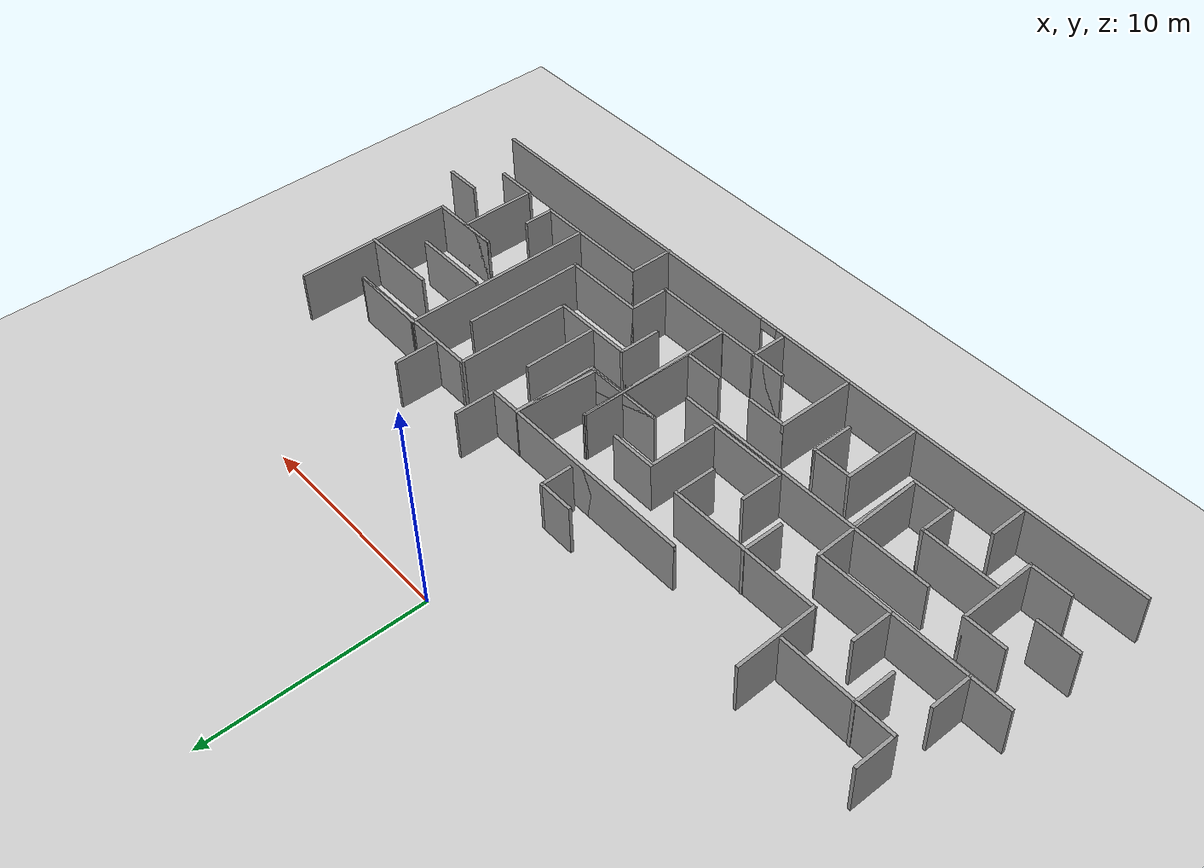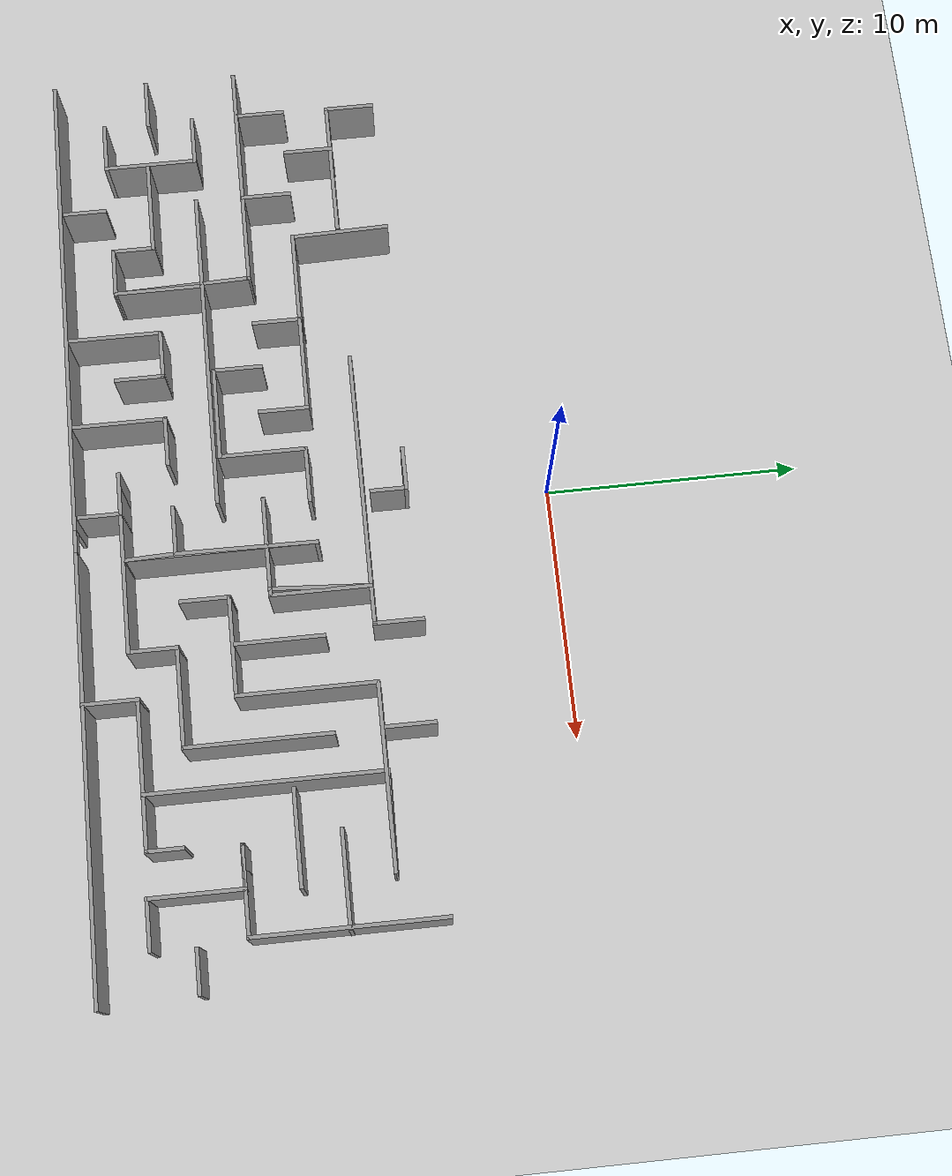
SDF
<sdf version="1.7">
 <world name="default">
  <model name="ground_plane">
   <static>1</static>
   <link name="link">
    <collision name="collision">
     <geometry><plane><normal>0 0 1</normal><size>100 100</size></plane></geometry>
     <surface>
      <contact><collide_bitmask>65535</collide_bitmask></contact>
      <friction><ode><mu>100</mu><mu2>50</mu2></ode></friction>
     </surface>
    </collision>
    <visual name="visual">
     <cast_shadows>0</cast_shadows>
     <geometry><plane><normal>0 0 1</normal><size>100 100</size></plane></geometry>
     <material>
      <script><uri>file://media/materials/scripts/gazebo.material</uri><name>Gazebo/Grey</name></script>
     </material>
    </visual>
   </link>
  </model>
  <model name="maze">
   <pose>-0.086607 -0.007324 0 0 -0 0</pose>
   <link name="Wall_100">
    <collision name="Wall_100_Collision">
     <geometry><box><size>9.5 0.15 2.5</size></box></geometry>
     <pose>0 0 1.25 0 -0 0</pose>
    </collision>
    <visual name="Wall_100_Visual">
     <pose>0 0 1.25 0 -0 0</pose>
     <geometry><box><size>9.5 0.15 2.5</size></box></geometry>
     <material>
      <script><uri>file://media/materials/scripts/gazebo.material</uri><name>Gazebo/Grey</name></script>
      <ambient>1 1 1 1</ambient>
     </material>
     <meta><layer>0</layer></meta>
    </visual>
    <pose>-0.81592 -7.32874 0 0 -0 3.14159</pose>
   </link>
   <link name="Wall_102">
    <collision name="Wall_102_Collision">
     <geometry><box><size>2 0.15 2.5</size></box></geometry>
     <pose>0 0 1.25 0 -0 0</pose>
    </collision>
    <visual name="Wall_102_Visual">
     <pose>0 0 1.25 0 -0 0</pose>
     <geometry><box><size>2 0.15 2.5</size></box></geometry>
     <material>
      <script><uri>file://media/materials/scripts/gazebo.material</uri><name>Gazebo/Grey</name></script>
      <ambient>1 1 1 1</ambient>
     </material>
     <meta><layer>0</layer></meta>
    </visual>
    <pose>-5.49649 -11.7996 0 0 -0 -1.5708</pose>
   </link>
   <link name="Wall_103">
    <collision name="Wall_103_Collision">
     <geometry><box><size>3.75 0.15 2.5</size></box></geometry>
     <pose>0 0 1.25 0 -0 0</pose>
    </collision>
    <visual name="Wall_103_Visual">
     <pose>0 0 1.25 0 -0 0</pose>
     <geometry><box><size>3.75 0.15 2.5</size></box></geometry>
     <material>
      <script><uri>file://media/materials/scripts/gazebo.material</uri><name>Gazebo/Grey</name></script>
      <ambient>1 1 1 1</ambient>
     </material>
     <meta><layer>0</layer></meta>
    </visual>
    <pose>-3.69649 -12.7246 0 0 -0 0</pose>
   </link>
   <link name="Wall_104">
    <collision name="Wall_104_Collision">
     <geometry><box><size>3.5 0.15 2.5</size></box></geometry>
     <pose>0 0 1.25 0 -0 0</pose>
    </collision>
    <visual name="Wall_104_Visual">
     <pose>0 0 1.25 0 -0 0</pose>
     <geometry><box><size>3.5 0.15 2.5</size></box></geometry>
     <material>
      <script><uri>file://media/materials/scripts/gazebo.material</uri><name>Gazebo/Grey</name></script>
      <ambient>1 1 1 1</ambient>
     </material>
     <meta><layer>0</layer></meta>
    </visual>
    <pose>-1.89649 -11.0496 0 0 -0 1.5708</pose>
   </link>
   <link name="Wall_105">
    <collision name="Wall_105_Collision">
     <geometry><box><size>2.25 0.15 2.5</size></box></geometry>
     <pose>0 0 1.25 0 -0 0</pose>
    </collision>
    <visual name="Wall_105_Visual">
     <pose>0 0 1.25 0 -0 0</pose>
     <geometry><box><size>2.25 0.15 2.5</size></box></geometry>
     <material>
      <script><uri>file://media/materials/scripts/gazebo.material</uri><name>Gazebo/Grey</name></script>
      <ambient>1 1 1 1</ambient>
     </material>
     <meta><layer>0</layer></meta>
    </visual>
    <pose>-0.846487 -9.37457 0 0 -0 0</pose>
   </link>
   <link name="Wall_107">
    <collision name="Wall_107_Collision">
     <geometry><box><size>1.5 0.15 2.5</size></box></geometry>
     <pose>0 0 1.25 0 -0 0</pose>
    </collision>
    <visual name="Wall_107_Visual">
     <pose>0 0 1.25 0 -0 0</pose>
     <geometry><box><size>1.5 0.15 2.5</size></box></geometry>
     <material>
      <script><uri>file://media/materials/scripts/gazebo.material</uri><name>Gazebo/Grey</name></script>
      <ambient>1 1 1 1</ambient>
     </material>
     <meta><layer>0</layer></meta>
    </visual>
    <pose>0.093707 -6.29433 0 0 -0 1.5708</pose>
   </link>
   <link name="Wall_108">
    <collision name="Wall_108_Collision">
     <geometry><box><size>1.75 0.15 2.5</size></box></geometry>
     <pose>0 0 1.25 0 -0 0</pose>
    </collision>
    <visual name="Wall_108_Visual">
     <pose>0 0 1.25 0 -0 0</pose>
     <geometry><box><size>1.75 0.15 2.5</size></box></geometry>
     <material>
      <script><uri>file://media/materials/scripts/gazebo.material</uri><name>Gazebo/Grey</name></script>
      <ambient>1 1 1 1</ambient>
     </material>
     <meta><layer>0</layer></meta>
    </visual>
    <pose>-0.706293 -5.61933 0 0 -0 3.14159</pose>
   </link>
   <link name="Wall_121">
    <collision name="Wall_121_Collision">
     <geometry><box><size>3.94367 0.15 2.5</size></box></geometry>
     <pose>0 0 1.25 0 -0 0</pose>
    </collision>
    <visual name="Wall_121_Visual">
     <pose>0 0 1.25 0 -0 0</pose>
     <geometry><box><size>3.94367 0.15 2.5</size></box></geometry>
     <material>
      <script><uri>file://media/materials/scripts/gazebo.material</uri><name>Gazebo/Grey</name></script>
      <ambient>1 1 1 1</ambient>
     </material>
     <meta><layer>0</layer></meta>
    </visual>
    <pose>-10.9874 -7.27492 0 0 -0 -1.54643</pose>
   </link>
   <link name="Wall_218">
    <collision name="Wall_218_Collision">
     <geometry><box><size>11 0.15 2.5</size></box></geometry>
     <pose>0 0 1.25 0 -0 0</pose>
    </collision>
    <visual name="Wall_218_Visual">
     <pose>0 0 1.25 0 -0 0</pose>
     <geometry><box><size>11 0.15 2.5</size></box></geometry>
     <material>
      <script><uri>file://media/materials/scripts/gazebo.material</uri><name>Gazebo/Grey</name></script>
      <ambient>1 1 1 1</ambient>
     </material>
     <meta><layer>0</layer></meta>
    </visual>
    <pose>-0.06592 -7.32874 0 0 -0 0</pose>
   </link>
   <link name="Wall_219">
    <collision name="Wall_219_Collision">
     <geometry><box><size>2 0.15 2.5</size></box></geometry>
     <pose>0 0 1.25 0 -0 0</pose>
    </collision>
    <visual name="Wall_219_Visual">
     <pose>0 0 1.25 0 -0 0</pose>
     <geometry><box><size>2 0.15 2.5</size></box></geometry>
     <material>
      <script><uri>file://media/materials/scripts/gazebo.material</uri><name>Gazebo/Grey</name></script>
      <ambient>1 1 1 1</ambient>
     </material>
     <meta><layer>0</layer></meta>
    </visual>
    <pose>5.35908 -6.40374 0 0 -0 1.5708</pose>
   </link>
   <link name="Wall_224">
    <collision name="Wall_224_Collision">
     <geometry><box><size>2 0.15 2.5</size></box></geometry>
     <pose>0 0 1.25 0 -0 0</pose>
    </collision>
    <visual name="Wall_224_Visual">
     <pose>0 0 1.25 0 -0 0</pose>
     <geometry><box><size>2 0.15 2.5</size></box></geometry>
     <material>
      <script><uri>file://media/materials/scripts/gazebo.material</uri><name>Gazebo/Grey</name></script>
      <ambient>1 1 1 1</ambient>
     </material>
     <meta><layer>0</layer></meta>
    </visual>
    <pose>0.93408 -14.6768 0 0 -0 0</pose>
   </link>
   <link name="Wall_225">
    <collision name="Wall_225_Collision">
     <geometry><box><size>5.5841 0.15 2.5</size></box></geometry>
     <pose>0 0 1.25 0 -0 0</pose>
    </collision>
    <visual name="Wall_225_Visual">
     <pose>0 0 1.25 0 -0 0</pose>
     <geometry><box><size>5.5841 0.15 2.5</size></box></geometry>
     <material>
      <script><uri>file://media/materials/scripts/gazebo.material</uri><name>Gazebo/Grey</name></script>
      <ambient>1 1 1 1</ambient>
     </material>
     <meta><layer>0</layer></meta>
    </visual>
    <pose>1.89223 -11.9599 0 0 -0 1.55859</pose>
   </link>
   <link name="Wall_226">
    <collision name="Wall_226_Collision">
     <geometry><box><size>0.16 0.15 2.5</size></box></geometry>
     <pose>0 0 1.25 0 -0 0</pose>
    </collision>
    <visual name="Wall_226_Visual">
     <pose>0 0 1.25 0 -0 0</pose>
     <geometry><box><size>0.16 0.15 2.5</size></box></geometry>
     <material>
      <script><uri>file://media/materials/scripts/gazebo.material</uri><name>Gazebo/Grey</name></script>
      <ambient>1 1 1 1</ambient>
     </material>
     <meta><layer>0</layer></meta>
    </visual>
    <pose>1.93038 -9.24306 0 0 -0 0</pose>
   </link>
   <link name="Wall_228">
    <collision name="Wall_228_Collision">
     <geometry><box><size>2.06745 0.15 2.5</size></box></geometry>
     <pose>0 0 1.25 0 -0 0</pose>
    </collision>
    <visual name="Wall_228_Visual">
     <pose>0 0 1.25 0 -0 0</pose>
     <geometry><box><size>2.06745 0.15 2.5</size></box></geometry>
     <material>
      <script><uri>file://media/materials/scripts/gazebo.material</uri><name>Gazebo/Grey</name></script>
      <ambient>1 1 1 1</ambient>
     </material>
     <meta><layer>0</layer></meta>
    </visual>
    <pose>1.89223 -15.6349 0 0 -0 1.60538</pose>
   </link>
   <link name="Wall_230">
    <collision name="Wall_230_Collision">
     <geometry><box><size>3.75 0.15 2.5</size></box></geometry>
     <pose>0 0 1.25 0 -0 0</pose>
    </collision>
    <visual name="Wall_230_Visual">
     <pose>0 0 1.25 0 -0 0</pose>
     <geometry><box><size>3.75 0.15 2.5</size></box></geometry>
     <material>
      <script><uri>file://media/materials/scripts/gazebo.material</uri><name>Gazebo/Grey</name></script>
      <ambient>1 1 1 1</ambient>
     </material>
     <meta><layer>0</layer></meta>
    </visual>
    <pose>1.80908 -11.1787 0 0 -0 0</pose>
   </link>
   <link name="Wall_231">
    <collision name="Wall_231_Collision">
     <geometry><box><size>4.00811 0.15 2.5</size></box></geometry>
     <pose>0 0 1.25 0 -0 0</pose>
    </collision>
    <visual name="Wall_231_Visual">
     <pose>0 0 1.25 0 -0 0</pose>
     <geometry><box><size>4.00811 0.15 2.5</size></box></geometry>
     <material>
      <script><uri>file://media/materials/scripts/gazebo.material</uri><name>Gazebo/Grey</name></script>
      <ambient>1 1 1 1</ambient>
     </material>
     <meta><layer>0</layer></meta>
    </visual>
    <pose>3.73408 -9.25375 0 0 -0 1.50595</pose>
   </link>
   <link name="Wall_263">
    <collision name="Wall_263_Collision">
     <geometry><box><size>2 0.15 2.5</size></box></geometry>
     <pose>0 0 1.25 0 -0 0</pose>
    </collision>
    <visual name="Wall_263_Visual">
     <pose>0 0 1.25 0 -0 0</pose>
     <geometry><box><size>2 0.15 2.5</size></box></geometry>
     <material>
      <script><uri>file://media/materials/scripts/gazebo.material</uri><name>Gazebo/Grey</name></script>
      <ambient>1 1 1 1</ambient>
     </material>
     <meta><layer>0</layer></meta>
    </visual>
    <pose>3.76932 -13.6793 0 0 -0 1.5708</pose>
   </link>
   <link name="Wall_264">
    <collision name="Wall_264_Collision">
     <geometry><box><size>4 0.15 2.5</size></box></geometry>
     <pose>0 0 1.25 0 -0 0</pose>
    </collision>
    <visual name="Wall_264_Visual">
     <pose>0 0 1.25 0 -0 0</pose>
     <geometry><box><size>4 0.15 2.5</size></box></geometry>
     <material>
      <script><uri>file://media/materials/scripts/gazebo.material</uri><name>Gazebo/Grey</name></script>
      <ambient>1 1 1 1</ambient>
     </material>
     <meta><layer>0</layer></meta>
    </visual>
    <pose>5.69432 -12.7544 0 0 -0 0</pose>
   </link>
   <link name="Wall_265">
    <collision name="Wall_265_Collision">
     <geometry><box><size>5.5 0.15 2.5</size></box></geometry>
     <pose>0 0 1.25 0 -0 0</pose>
    </collision>
    <visual name="Wall_265_Visual">
     <pose>0 0 1.25 0 -0 0</pose>
     <geometry><box><size>5.5 0.15 2.5</size></box></geometry>
     <material>
      <script><uri>file://media/materials/scripts/gazebo.material</uri><name>Gazebo/Grey</name></script>
      <ambient>1 1 1 1</ambient>
     </material>
     <meta><layer>0</layer></meta>
    </visual>
    <pose>7.61932 -10.0793 0 0 -0 1.5708</pose>
   </link>
   <link name="Wall_266">
    <collision name="Wall_266_Collision">
     <geometry><box><size>7.25 0.15 2.5</size></box></geometry>
     <pose>0 0 1.25 0 -0 0</pose>
    </collision>
    <visual name="Wall_266_Visual">
     <pose>0 0 1.25 0 -0 0</pose>
     <geometry><box><size>7.25 0.15 2.5</size></box></geometry>
     <material>
      <script><uri>file://media/materials/scripts/gazebo.material</uri><name>Gazebo/Grey</name></script>
      <ambient>1 1 1 1</ambient>
     </material>
     <meta><layer>0</layer></meta>
    </visual>
    <pose>11.1693 -7.40435 0 0 -0 0</pose>
   </link>
   <link name="Wall_274">
    <collision name="Wall_274_Collision">
     <geometry><box><size>2 0.15 2.5</size></box></geometry>
     <pose>0 0 1.25 0 -0 0</pose>
    </collision>
    <visual name="Wall_274_Visual">
     <pose>0 0 1.25 0 -0 0</pose>
     <geometry><box><size>2 0.15 2.5</size></box></geometry>
     <material>
      <script><uri>file://media/materials/scripts/gazebo.material</uri><name>Gazebo/Grey</name></script>
      <ambient>1 1 1 1</ambient>
     </material>
     <meta><layer>0</layer></meta>
    </visual>
    <pose>9.35536 -6.3377 0 0 -0 1.5708</pose>
   </link>
   <link name="Wall_276">
    <collision name="Wall_276_Collision">
     <geometry><box><size>2.25 0.15 2.5</size></box></geometry>
     <pose>0 0 1.25 0 -0 0</pose>
    </collision>
    <visual name="Wall_276_Visual">
     <pose>0 0 1.25 0 -0 0</pose>
     <geometry><box><size>2.25 0.15 2.5</size></box></geometry>
     <material>
      <script><uri>file://media/materials/scripts/gazebo.material</uri><name>Gazebo/Grey</name></script>
      <ambient>1 1 1 1</ambient>
     </material>
     <meta><layer>0</layer></meta>
    </visual>
    <pose>7.38694 -17.4912 0 0 -0 1.5708</pose>
   </link>
   <link name="Wall_277">
    <collision name="Wall_277_Collision">
     <geometry><box><size>3.75 0.15 2.5</size></box></geometry>
     <pose>0 0 1.25 0 -0 0</pose>
    </collision>
    <visual name="Wall_277_Visual">
     <pose>0 0 1.25 0 -0 0</pose>
     <geometry><box><size>3.75 0.15 2.5</size></box></geometry>
     <material>
      <script><uri>file://media/materials/scripts/gazebo.material</uri><name>Gazebo/Grey</name></script>
      <ambient>1 1 1 1</ambient>
     </material>
     <meta><layer>0</layer></meta>
    </visual>
    <pose>9.18694 -16.4412 0 0 -0 0</pose>
   </link>
   <link name="Wall_278">
    <collision name="Wall_278_Collision">
     <geometry><box><size>9.25 0.15 2.5</size></box></geometry>
     <pose>0 0 1.25 0 -0 0</pose>
    </collision>
    <visual name="Wall_278_Visual">
     <pose>0 0 1.25 0 -0 0</pose>
     <geometry><box><size>9.25 0.15 2.5</size></box></geometry>
     <material>
      <script><uri>file://media/materials/scripts/gazebo.material</uri><name>Gazebo/Grey</name></script>
      <ambient>1 1 1 1</ambient>
     </material>
     <meta><layer>0</layer></meta>
    </visual>
    <pose>10.9869 -11.8912 0 0 -0 1.5708</pose>
   </link>
   <link name="Wall_279">
    <collision name="Wall_279_Collision">
     <geometry><box><size>3.88291 0.15 2.5</size></box></geometry>
     <pose>0 0 1.25 0 -0 0</pose>
    </collision>
    <visual name="Wall_279_Visual">
     <pose>0 0 1.25 0 -0 0</pose>
     <geometry><box><size>3.88291 0.15 2.5</size></box></geometry>
     <material>
      <script><uri>file://media/materials/scripts/gazebo.material</uri><name>Gazebo/Grey</name></script>
      <ambient>1 1 1 1</ambient>
     </material>
     <meta><layer>0</layer></meta>
    </visual>
    <pose>12.8531 -7.37277 0 0 -0 -0.016923</pose>
   </link>
   <link name="Wall_281">
    <collision name="Wall_281_Collision">
     <geometry><box><size>2.25 0.15 2.5</size></box></geometry>
     <pose>0 0 1.25 0 -0 0</pose>
    </collision>
    <visual name="Wall_281_Visual">
     <pose>0 0 1.25 0 -0 0</pose>
     <geometry><box><size>2.25 0.15 2.5</size></box></geometry>
     <material>
      <script><uri>file://media/materials/scripts/gazebo.material</uri><name>Gazebo/Grey</name></script>
      <ambient>1 1 1 1</ambient>
     </material>
     <meta><layer>0</layer></meta>
    </visual>
    <pose>12.0369 -16.4412 0 0 -0 0</pose>
   </link>
   <link name="Wall_282">
    <collision name="Wall_282_Collision">
     <geometry><box><size>1.5 0.15 2.5</size></box></geometry>
     <pose>0 0 1.25 0 -0 0</pose>
    </collision>
    <visual name="Wall_282_Visual">
     <pose>0 0 1.25 0 -0 0</pose>
     <geometry><box><size>1.5 0.15 2.5</size></box></geometry>
     <material>
      <script><uri>file://media/materials/scripts/gazebo.material</uri><name>Gazebo/Grey</name></script>
      <ambient>1 1 1 1</ambient>
     </material>
     <meta><layer>0</layer></meta>
    </visual>
    <pose>13.0869 -15.7662 0 0 -0 1.5708</pose>
   </link>
   <link name="Wall_284">
    <collision name="Wall_284_Collision">
     <geometry><box><size>3.75 0.15 2.5</size></box></geometry>
     <pose>0 0 1.25 0 -0 0</pose>
    </collision>
    <visual name="Wall_284_Visual">
     <pose>0 0 1.25 0 -0 0</pose>
     <geometry><box><size>3.75 0.15 2.5</size></box></geometry>
     <material>
      <script><uri>file://media/materials/scripts/gazebo.material</uri><name>Gazebo/Grey</name></script>
      <ambient>1 1 1 1</ambient>
     </material>
     <meta><layer>0</layer></meta>
    </visual>
    <pose>13.1238 -10.8803 0 0 -0 0</pose>
   </link>
   <link name="Wall_286">
    <collision name="Wall_286_Collision">
     <geometry><box><size>2 0.15 2.5</size></box></geometry>
     <pose>0 0 1.25 0 -0 0</pose>
    </collision>
    <visual name="Wall_286_Visual">
     <pose>0 0 1.25 0 -0 0</pose>
     <geometry><box><size>2 0.15 2.5</size></box></geometry>
     <material>
      <script><uri>file://media/materials/scripts/gazebo.material</uri><name>Gazebo/Grey</name></script>
      <ambient>1 1 1 1</ambient>
     </material>
     <meta><layer>0</layer></meta>
    </visual>
    <pose>15.7188 -16.5196 0 0 -0 3.14159</pose>
   </link>
   <link name="Wall_287">
    <collision name="Wall_287_Collision">
     <geometry><box><size>3.75 0.15 2.5</size></box></geometry>
     <pose>0 0 1.25 0 -0 0</pose>
    </collision>
    <visual name="Wall_287_Visual">
     <pose>0 0 1.25 0 -0 0</pose>
     <geometry><box><size>3.75 0.15 2.5</size></box></geometry>
     <material>
      <script><uri>file://media/materials/scripts/gazebo.material</uri><name>Gazebo/Grey</name></script>
      <ambient>1 1 1 1</ambient>
     </material>
     <meta><layer>0</layer></meta>
    </visual>
    <pose>14.7938 -14.7196 0 0 -0 1.5708</pose>
   </link>
   <link name="Wall_288">
    <collision name="Wall_288_Collision">
     <geometry><box><size>1.75 0.15 2.5</size></box></geometry>
     <pose>0 0 1.25 0 -0 0</pose>
    </collision>
    <visual name="Wall_288_Visual">
     <pose>0 0 1.25 0 -0 0</pose>
     <geometry><box><size>1.75 0.15 2.5</size></box></geometry>
     <material>
      <script><uri>file://media/materials/scripts/gazebo.material</uri><name>Gazebo/Grey</name></script>
      <ambient>1 1 1 1</ambient>
     </material>
     <meta><layer>0</layer></meta>
    </visual>
    <pose>13.9938 -12.9196 0 0 -0 3.14159</pose>
   </link>
   <link name="Wall_289">
    <collision name="Wall_289_Collision">
     <geometry><box><size>3.5 0.15 2.5</size></box></geometry>
     <pose>0 0 1.25 0 -0 0</pose>
    </collision>
    <visual name="Wall_289_Visual">
     <pose>0 0 1.25 0 -0 0</pose>
     <geometry><box><size>3.5 0.15 2.5</size></box></geometry>
     <material>
      <script><uri>file://media/materials/scripts/gazebo.material</uri><name>Gazebo/Grey</name></script>
      <ambient>1 1 1 1</ambient>
     </material>
     <meta><layer>0</layer></meta>
    </visual>
    <pose>14.8688 -12.9196 0 0 -0 0</pose>
   </link>
   <link name="Wall_290">
    <collision name="Wall_290_Collision">
     <geometry><box><size>7.5 0.15 2.5</size></box></geometry>
     <pose>0 0 1.25 0 -0 0</pose>
    </collision>
    <visual name="Wall_290_Visual">
     <pose>0 0 1.25 0 -0 0</pose>
     <geometry><box><size>7.5 0.15 2.5</size></box></geometry>
     <material>
      <script><uri>file://media/materials/scripts/gazebo.material</uri><name>Gazebo/Grey</name></script>
      <ambient>1 1 1 1</ambient>
     </material>
     <meta><layer>0</layer></meta>
    </visual>
    <pose>16.5438 -9.24456 0 0 -0 1.5708</pose>
   </link>
   <link name="Wall_293">
    <collision name="Wall_293_Collision">
     <geometry><box><size>3.75 0.15 2.5</size></box></geometry>
     <pose>0 0 1.25 0 -0 0</pose>
    </collision>
    <visual name="Wall_293_Visual">
     <pose>0 0 1.25 0 -0 0</pose>
     <geometry><box><size>3.75 0.15 2.5</size></box></geometry>
     <material>
      <script><uri>file://media/materials/scripts/gazebo.material</uri><name>Gazebo/Grey</name></script>
      <ambient>1 1 1 1</ambient>
     </material>
     <meta><layer>0</layer></meta>
    </visual>
    <pose>14.773 -9.23111 0 0 -0 0</pose>
   </link>
   <link name="Wall_295">
    <collision name="Wall_295_Collision">
     <geometry><box><size>1.75 0.15 2.5</size></box></geometry>
     <pose>0 0 1.25 0 -0 0</pose>
    </collision>
    <visual name="Wall_295_Visual">
     <pose>0 0 1.25 0 -0 0</pose>
     <geometry><box><size>1.75 0.15 2.5</size></box></geometry>
     <material>
      <script><uri>file://media/materials/scripts/gazebo.material</uri><name>Gazebo/Grey</name></script>
      <ambient>1 1 1 1</ambient>
     </material>
     <meta><layer>0</layer></meta>
    </visual>
    <pose>17.5502 -14.8172 0 0 -0 0</pose>
   </link>
   <link name="Wall_297">
    <collision name="Wall_297_Collision">
     <geometry><box><size>3.5 0.15 2.5</size></box></geometry>
     <pose>0 0 1.25 0 -0 0</pose>
    </collision>
    <visual name="Wall_297_Visual">
     <pose>0 0 1.25 0 -0 0</pose>
     <geometry><box><size>3.5 0.15 2.5</size></box></geometry>
     <material>
      <script><uri>file://media/materials/scripts/gazebo.material</uri><name>Gazebo/Grey</name></script>
      <ambient>1 1 1 1</ambient>
     </material>
     <meta><layer>0</layer></meta>
    </visual>
    <pose>5.63133 -10.9609 0 0 -0 1.5708</pose>
   </link>
   <link name="Wall_3">
    <pose>-0.000285 -18.4864 0 0 -0 3.13872</pose>
    <visual name="Wall_3_Visual_0">
     <pose>-10.0138 0 1.25 0 -0 0</pose>
     <geometry><box><size>17.1502 0.15 2.5</size></box></geometry>
     <material>
      <script><uri>file://media/materials/scripts/gazebo.material</uri><name>Gazebo/Grey</name></script>
      <ambient>1 1 1 1</ambient>
     </material>
     <meta><layer>0</layer></meta>
    </visual>
    <collision name="Wall_3_Collision_0">
     <geometry><box><size>17.1502 0.15 2.5</size></box></geometry>
     <pose>-10.0138 0 1.25 0 -0 0</pose>
    </collision>
    <visual name="Wall_3_Visual_1">
     <pose>9.02508 0 1.25 0 -0 0</pose>
     <geometry><box><size>19.1277 0.15 2.5</size></box></geometry>
     <material>
      <script><uri>file://media/materials/scripts/gazebo.material</uri><name>Gazebo/Grey</name></script>
      <ambient>1 1 1 1</ambient>
     </material>
     <meta><layer>0</layer></meta>
    </visual>
    <collision name="Wall_3_Collision_1">
     <geometry><box><size>19.1277 0.15 2.5</size></box></geometry>
     <pose>9.02508 0 1.25 0 -0 0</pose>
    </collision>
    <visual name="Wall_3_Visual_2">
     <pose>-0.988742 0 2.25 0 -0 0</pose>
     <geometry><box><size>0.9 0.15 0.5</size></box></geometry>
     <material>
      <script><uri>file://media/materials/scripts/gazebo.material</uri><name>Gazebo/Grey</name></script>
      <ambient>1 1 1 1</ambient>
     </material>
     <meta><layer>0</layer></meta>
    </visual>
    <collision name="Wall_3_Collision_2">
     <geometry><box><size>0.9 0.15 0.5</size></box></geometry>
     <pose>-0.988742 0 2.25 0 -0 0</pose>
    </collision>
   </link>
   <link name="Wall_45">
    <collision name="Wall_45_Collision">
     <geometry><box><size>2 0.15 2.5</size></box></geometry>
     <pose>0 0 1.25 0 -0 0</pose>
    </collision>
    <visual name="Wall_45_Visual">
     <pose>0 0 1.25 0 -0 0</pose>
     <geometry><box><size>2 0.15 2.5</size></box></geometry>
     <material>
      <script><uri>file://media/materials/scripts/gazebo.material</uri><name>Gazebo/Grey</name></script>
      <ambient>1 1 1 1</ambient>
     </material>
     <meta><layer>0</layer></meta>
    </visual>
    <pose>-16.5435 -6.41567 0 0 -0 -1.5708</pose>
   </link>
   <link name="Wall_46">
    <collision name="Wall_46_Collision">
     <geometry><box><size>5.5 0.15 2.5</size></box></geometry>
     <pose>0 0 1.25 0 -0 0</pose>
    </collision>
    <visual name="Wall_46_Visual">
     <pose>0 0 1.25 0 -0 0</pose>
     <geometry><box><size>5.5 0.15 2.5</size></box></geometry>
     <material>
      <script><uri>file://media/materials/scripts/gazebo.material</uri><name>Gazebo/Grey</name></script>
      <ambient>1 1 1 1</ambient>
     </material>
     <meta><layer>0</layer></meta>
    </visual>
    <pose>-13.8685 -7.34067 0 0 -0 0</pose>
   </link>
   <link name="Wall_48">
    <collision name="Wall_48_Collision">
     <geometry><box><size>2 0.15 2.5</size></box></geometry>
     <pose>0 0 1.25 0 -0 0</pose>
    </collision>
    <visual name="Wall_48_Visual">
     <pose>0 0 1.25 0 -0 0</pose>
     <geometry><box><size>2 0.15 2.5</size></box></geometry>
     <material>
      <script><uri>file://media/materials/scripts/gazebo.material</uri><name>Gazebo/Grey</name></script>
      <ambient>1 1 1 1</ambient>
     </material>
     <meta><layer>0</layer></meta>
    </visual>
    <pose>-14.7434 -8.24072 0 0 -0 -1.5708</pose>
   </link>
   <link name="Wall_50">
    <collision name="Wall_50_Collision">
     <geometry><box><size>9.25 0.15 2.5</size></box></geometry>
     <pose>0 0 1.25 0 -0 0</pose>
    </collision>
    <visual name="Wall_50_Visual">
     <pose>0 0 1.25 0 -0 0</pose>
     <geometry><box><size>9.25 0.15 2.5</size></box></geometry>
     <material>
      <script><uri>file://media/materials/scripts/gazebo.material</uri><name>Gazebo/Grey</name></script>
      <ambient>1 1 1 1</ambient>
     </material>
     <meta><layer>0</layer></meta>
    </visual>
    <pose>-13.8739 -11.0571 0 0 -0 0</pose>
   </link>
   <link name="Wall_52">
    <collision name="Wall_52_Collision">
     <geometry><box><size>2 0.15 2.5</size></box></geometry>
     <pose>0 0 1.25 0 -0 0</pose>
    </collision>
    <visual name="Wall_52_Visual">
     <pose>0 0 1.25 0 -0 0</pose>
     <geometry><box><size>2 0.15 2.5</size></box></geometry>
     <material>
      <script><uri>file://media/materials/scripts/gazebo.material</uri><name>Gazebo/Grey</name></script>
      <ambient>1 1 1 1</ambient>
     </material>
     <meta><layer>0</layer></meta>
    </visual>
    <pose>-16.5989 -10.0962 0 0 -0 -1.5708</pose>
   </link>
   <link name="Wall_54">
    <collision name="Wall_54_Collision">
     <geometry><box><size>2 0.15 2.5</size></box></geometry>
     <pose>0 0 1.25 0 -0 0</pose>
    </collision>
    <visual name="Wall_54_Visual">
     <pose>0 0 1.25 0 -0 0</pose>
     <geometry><box><size>2 0.15 2.5</size></box></geometry>
     <material>
      <script><uri>file://media/materials/scripts/gazebo.material</uri><name>Gazebo/Grey</name></script>
      <ambient>1 1 1 1</ambient>
     </material>
     <meta><layer>0</layer></meta>
    </visual>
    <pose>-12.8879 -10.0962 0 0 -0 -1.5708</pose>
   </link>
   <link name="Wall_56">
    <collision name="Wall_56_Collision">
     <geometry><box><size>2 0.15 2.5</size></box></geometry>
     <pose>0 0 1.25 0 -0 0</pose>
    </collision>
    <visual name="Wall_56_Visual">
     <pose>0 0 1.25 0 -0 0</pose>
     <geometry><box><size>2 0.15 2.5</size></box></geometry>
     <material>
      <script><uri>file://media/materials/scripts/gazebo.material</uri><name>Gazebo/Grey</name></script>
      <ambient>1 1 1 1</ambient>
     </material>
     <meta><layer>0</layer></meta>
    </visual>
    <pose>-15.6739 -12.8821 0 0 -0 0</pose>
   </link>
   <link name="Wall_57">
    <collision name="Wall_57_Collision">
     <geometry><box><size>3.75 0.15 2.5</size></box></geometry>
     <pose>0 0 1.25 0 -0 0</pose>
    </collision>
    <visual name="Wall_57_Visual">
     <pose>0 0 1.25 0 -0 0</pose>
     <geometry><box><size>3.75 0.15 2.5</size></box></geometry>
     <material>
      <script><uri>file://media/materials/scripts/gazebo.material</uri><name>Gazebo/Grey</name></script>
      <ambient>1 1 1 1</ambient>
     </material>
     <meta><layer>0</layer></meta>
    </visual>
    <pose>-14.7489 -14.6821 0 0 -0 -1.5708</pose>
   </link>
   <link name="Wall_58">
    <collision name="Wall_58_Collision">
     <geometry><box><size>2 0.15 2.5</size></box></geometry>
     <pose>0 0 1.25 0 -0 0</pose>
    </collision>
    <visual name="Wall_58_Visual">
     <pose>0 0 1.25 0 -0 0</pose>
     <geometry><box><size>2 0.15 2.5</size></box></geometry>
     <material>
      <script><uri>file://media/materials/scripts/gazebo.material</uri><name>Gazebo/Grey</name></script>
      <ambient>1 1 1 1</ambient>
     </material>
     <meta><layer>0</layer></meta>
    </visual>
    <pose>-15.6739 -16.4821 0 0 -0 3.14159</pose>
   </link>
   <link name="Wall_60">
    <collision name="Wall_60_Collision">
     <geometry><box><size>2 0.15 2.5</size></box></geometry>
     <pose>0 0 1.25 0 -0 0</pose>
    </collision>
    <visual name="Wall_60_Visual">
     <pose>0 0 1.25 0 -0 0</pose>
     <geometry><box><size>2 0.15 2.5</size></box></geometry>
     <material>
      <script><uri>file://media/materials/scripts/gazebo.material</uri><name>Gazebo/Grey</name></script>
      <ambient>1 1 1 1</ambient>
     </material>
     <meta><layer>0</layer></meta>
    </visual>
    <pose>-17.4989 -14.6768 0 0 -0 0</pose>
   </link>
   <link name="Wall_62">
    <collision name="Wall_62_Collision">
     <geometry><box><size>3.75 0.15 2.5</size></box></geometry>
     <pose>0 0 1.25 0 -0 0</pose>
    </collision>
    <visual name="Wall_62_Visual">
     <pose>0 0 1.25 0 -0 0</pose>
     <geometry><box><size>3.75 0.15 2.5</size></box></geometry>
     <material>
      <script><uri>file://media/materials/scripts/gazebo.material</uri><name>Gazebo/Grey</name></script>
      <ambient>1 1 1 1</ambient>
     </material>
     <meta><layer>0</layer></meta>
    </visual>
    <pose>-12.8217 -14.7984 0 0 -0 0</pose>
   </link>
   <link name="Wall_63">
    <collision name="Wall_63_Collision">
     <geometry><box><size>1.75 0.15 2.5</size></box></geometry>
     <pose>0 0 1.25 0 -0 0</pose>
    </collision>
    <visual name="Wall_63_Visual">
     <pose>0 0 1.25 0 -0 0</pose>
     <geometry><box><size>1.75 0.15 2.5</size></box></geometry>
     <material>
      <script><uri>file://media/materials/scripts/gazebo.material</uri><name>Gazebo/Grey</name></script>
      <ambient>1 1 1 1</ambient>
     </material>
     <meta><layer>0</layer></meta>
    </visual>
    <pose>-11.0217 -15.5984 0 0 -0 -1.5708</pose>
   </link>
   <link name="Wall_64">
    <collision name="Wall_64_Collision">
     <geometry><box><size>2 0.15 2.5</size></box></geometry>
     <pose>0 0 1.25 0 -0 0</pose>
    </collision>
    <visual name="Wall_64_Visual">
     <pose>0 0 1.25 0 -0 0</pose>
     <geometry><box><size>2 0.15 2.5</size></box></geometry>
     <material>
      <script><uri>file://media/materials/scripts/gazebo.material</uri><name>Gazebo/Grey</name></script>
      <ambient>1 1 1 1</ambient>
     </material>
     <meta><layer>0</layer></meta>
    </visual>
    <pose>-10.0967 -16.3984 0 0 -0 0</pose>
   </link>
   <link name="Wall_66">
    <collision name="Wall_66_Collision">
     <geometry><box><size>5.49352 0.15 2.5</size></box></geometry>
     <pose>0 0 1.25 0 -0 0</pose>
    </collision>
    <visual name="Wall_66_Visual">
     <pose>0 0 1.25 0 -0 0</pose>
     <geometry><box><size>5.49352 0.15 2.5</size></box></geometry>
     <material>
      <script><uri>file://media/materials/scripts/gazebo.material</uri><name>Gazebo/Grey</name></script>
      <ambient>1 1 1 1</ambient>
     </material>
     <meta><layer>0</layer></meta>
    </visual>
    <pose>-9.24783 -13.7278 0 0 -0 -1.54231</pose>
   </link>
   <link name="Wall_67">
    <collision name="Wall_67_Collision">
     <geometry><box><size>3.5 0.15 2.5</size></box></geometry>
     <pose>0 0 1.25 0 -0 0</pose>
    </collision>
    <visual name="Wall_67_Visual">
     <pose>0 0 1.25 0 -0 0</pose>
     <geometry><box><size>3.5 0.15 2.5</size></box></geometry>
     <material>
      <script><uri>file://media/materials/scripts/gazebo.material</uri><name>Gazebo/Grey</name></script>
      <ambient>1 1 1 1</ambient>
     </material>
     <meta><layer>0</layer></meta>
    </visual>
    <pose>-9.17174 -14.7234 0 0 -0 1.5708</pose>
   </link>
   <link name="Wall_69">
    <collision name="Wall_69_Collision">
     <geometry><box><size>13 0.15 2.5</size></box></geometry>
     <pose>0 0 1.25 0 -0 0</pose>
    </collision>
    <visual name="Wall_69_Visual">
     <pose>0 0 1.25 0 -0 0</pose>
     <geometry><box><size>13 0.15 2.5</size></box></geometry>
     <material>
      <script><uri>file://media/materials/scripts/gazebo.material</uri><name>Gazebo/Grey</name></script>
      <ambient>1 1 1 1</ambient>
     </material>
     <meta><layer>0</layer></meta>
    </visual>
    <pose>-6.49336 -12.943 0 0 -0 0</pose>
   </link>
   <link name="Wall_71">
    <collision name="Wall_71_Collision">
     <geometry><box><size>7.5 0.15 2.5</size></box></geometry>
     <pose>0 0 1.25 0 -0 0</pose>
    </collision>
    <visual name="Wall_71_Visual">
     <pose>0 0 1.25 0 -0 0</pose>
     <geometry><box><size>7.5 0.15 2.5</size></box></geometry>
     <material>
      <script><uri>file://media/materials/scripts/gazebo.material</uri><name>Gazebo/Grey</name></script>
      <ambient>1 1 1 1</ambient>
     </material>
     <meta><layer>0</layer></meta>
    </visual>
    <pose>-7.26622 -9.17119 0 0 -0 0</pose>
   </link>
   <link name="Wall_73">
    <collision name="Wall_73_Collision">
     <geometry><box><size>2 0.15 2.5</size></box></geometry>
     <pose>0 0 1.25 0 -0 0</pose>
    </collision>
    <visual name="Wall_73_Visual">
     <pose>0 0 1.25 0 -0 0</pose>
     <geometry><box><size>2 0.15 2.5</size></box></geometry>
     <material>
      <script><uri>file://media/materials/scripts/gazebo.material</uri><name>Gazebo/Grey</name></script>
      <ambient>1 1 1 1</ambient>
     </material>
     <meta><layer>0</layer></meta>
    </visual>
    <pose>-3.59122 -10.0962 0 0 -0 -1.5708</pose>
   </link>
   <link name="Wall_75">
    <collision name="Wall_75_Collision">
     <geometry><box><size>2 0.15 2.5</size></box></geometry>
     <pose>0 0 1.25 0 -0 0</pose>
    </collision>
    <visual name="Wall_75_Visual">
     <pose>0 0 1.25 0 -0 0</pose>
     <geometry><box><size>2 0.15 2.5</size></box></geometry>
     <material>
      <script><uri>file://media/materials/scripts/gazebo.material</uri><name>Gazebo/Grey</name></script>
      <ambient>1 1 1 1</ambient>
     </material>
     <meta><layer>0</layer></meta>
    </visual>
    <pose>-7.35195 -10.0658 0 0 -0 -1.5708</pose>
   </link>
   <link name="Wall_77">
    <collision name="Wall_77_Collision">
     <geometry><box><size>1.75 0.15 2.5</size></box></geometry>
     <pose>0 0 1.25 0 -0 0</pose>
    </collision>
    <visual name="Wall_77_Visual">
     <pose>0 0 1.25 0 -0 0</pose>
     <geometry><box><size>1.75 0.15 2.5</size></box></geometry>
     <material>
      <script><uri>file://media/materials/scripts/gazebo.material</uri><name>Gazebo/Grey</name></script>
      <ambient>1 1 1 1</ambient>
     </material>
     <meta><layer>0</layer></meta>
    </visual>
    <pose>-12.8575 -17.466 0 0 -0 1.5708</pose>
   </link>
   <link name="Wall_79">
    <collision name="Wall_79_Collision">
     <geometry><box><size>3.75 0.15 2.5</size></box></geometry>
     <pose>0 0 1.25 0 -0 0</pose>
    </collision>
    <visual name="Wall_79_Visual">
     <pose>0 0 1.25 0 -0 0</pose>
     <geometry><box><size>3.75 0.15 2.5</size></box></geometry>
     <material>
      <script><uri>file://media/materials/scripts/gazebo.material</uri><name>Gazebo/Grey</name></script>
      <ambient>1 1 1 1</ambient>
     </material>
     <meta><layer>0</layer></meta>
    </visual>
    <pose>-7.32154 -16.5269 0 0 -0 1.5708</pose>
   </link>
   <link name="Wall_81">
    <collision name="Wall_81_Collision">
     <geometry><box><size>2 0.15 2.5</size></box></geometry>
     <pose>0 0 1.25 0 -0 0</pose>
    </collision>
    <visual name="Wall_81_Visual">
     <pose>0 0 1.25 0 -0 0</pose>
     <geometry><box><size>2 0.15 2.5</size></box></geometry>
     <material>
      <script><uri>file://media/materials/scripts/gazebo.material</uri><name>Gazebo/Grey</name></script>
      <ambient>1 1 1 1</ambient>
     </material>
     <meta><layer>0</layer></meta>
    </visual>
    <pose>-6.39654 -14.7269 0 0 -0 0</pose>
   </link>
   <link name="Wall_82">
    <collision name="Wall_82_Collision">
     <geometry><box><size>2 0.15 2.5</size></box></geometry>
     <pose>0 0 1.25 0 -0 0</pose>
    </collision>
    <visual name="Wall_82_Visual">
     <pose>0 0 1.25 0 -0 0</pose>
     <geometry><box><size>2 0.15 2.5</size></box></geometry>
     <material>
      <script><uri>file://media/materials/scripts/gazebo.material</uri><name>Gazebo/Grey</name></script>
      <ambient>1 1 1 1</ambient>
     </material>
     <meta><layer>0</layer></meta>
    </visual>
    <pose>-5.47154 -15.6519 0 0 -0 -1.5708</pose>
   </link>
   <link name="Wall_84">
    <collision name="Wall_84_Collision">
     <geometry><box><size>3.75 0.15 2.5</size></box></geometry>
     <pose>0 0 1.25 0 -0 0</pose>
    </collision>
    <visual name="Wall_84_Visual">
     <pose>0 0 1.25 0 -0 0</pose>
     <geometry><box><size>3.75 0.15 2.5</size></box></geometry>
     <material>
      <script><uri>file://media/materials/scripts/gazebo.material</uri><name>Gazebo/Grey</name></script>
      <ambient>1 1 1 1</ambient>
     </material>
     <meta><layer>0</layer></meta>
    </visual>
    <pose>-3.67144 -16.5573 0 0 -0 1.5708</pose>
   </link>
   <link name="Wall_85">
    <collision name="Wall_85_Collision">
     <geometry><box><size>2 0.15 2.5</size></box></geometry>
     <pose>0 0 1.25 0 -0 0</pose>
    </collision>
    <visual name="Wall_85_Visual">
     <pose>0 0 1.25 0 -0 0</pose>
     <geometry><box><size>2 0.15 2.5</size></box></geometry>
     <material>
      <script><uri>file://media/materials/scripts/gazebo.material</uri><name>Gazebo/Grey</name></script>
      <ambient>1 1 1 1</ambient>
     </material>
     <meta><layer>0</layer></meta>
    </visual>
    <pose>-2.74644 -14.7573 0 0 -0 0</pose>
   </link>
   <link name="Wall_87">
    <collision name="Wall_87_Collision">
     <geometry><box><size>1.75 0.15 2.5</size></box></geometry>
     <pose>0 0 1.25 0 -0 0</pose>
    </collision>
    <visual name="Wall_87_Visual">
     <pose>0 0 1.25 0 -0 0</pose>
     <geometry><box><size>1.75 0.15 2.5</size></box></geometry>
     <material>
      <script><uri>file://media/materials/scripts/gazebo.material</uri><name>Gazebo/Grey</name></script>
      <ambient>1 1 1 1</ambient>
     </material>
     <meta><layer>0</layer></meta>
    </visual>
    <pose>0.039498 -17.4964 0 0 -0 1.5708</pose>
   </link>
   <link name="Wall_88">
    <collision name="Wall_88_Collision">
     <geometry><box><size>1.75 0.15 2.5</size></box></geometry>
     <pose>0 0 1.25 0 -0 0</pose>
    </collision>
    <visual name="Wall_88_Visual">
     <pose>0 0 1.25 0 -0 0</pose>
     <geometry><box><size>1.75 0.15 2.5</size></box></geometry>
     <material>
      <script><uri>file://media/materials/scripts/gazebo.material</uri><name>Gazebo/Grey</name></script>
      <ambient>1 1 1 1</ambient>
     </material>
     <meta><layer>0</layer></meta>
    </visual>
    <pose>-0.760502 -16.6964 0 0 -0 3.14159</pose>
   </link>
   <link name="Wall_89">
    <collision name="Wall_89_Collision">
     <geometry><box><size>7.25 0.15 2.5</size></box></geometry>
     <pose>0 0 1.25 0 -0 0</pose>
    </collision>
    <visual name="Wall_89_Visual">
     <pose>0 0 1.25 0 -0 0</pose>
     <geometry><box><size>7.25 0.15 2.5</size></box></geometry>
     <material>
      <script><uri>file://media/materials/scripts/gazebo.material</uri><name>Gazebo/Grey</name></script>
      <ambient>1 1 1 1</ambient>
     </material>
     <meta><layer>0</layer></meta>
    </visual>
    <pose>1.9895 -16.6964 0 0 -0 0</pose>
   </link>
   <link name="Wall_90">
    <collision name="Wall_90_Collision">
     <geometry><box><size>2 0.15 2.5</size></box></geometry>
     <pose>0 0 1.25 0 -0 0</pose>
    </collision>
    <visual name="Wall_90_Visual">
     <pose>0 0 1.25 0 -0 0</pose>
     <geometry><box><size>2 0.15 2.5</size></box></geometry>
     <material>
      <script><uri>file://media/materials/scripts/gazebo.material</uri><name>Gazebo/Grey</name></script>
      <ambient>1 1 1 1</ambient>
     </material>
     <meta><layer>0</layer></meta>
    </visual>
    <pose>5.5395 -15.7714 0 0 -0 1.5708</pose>
   </link>
   <link name="Wall_91">
    <collision name="Wall_91_Collision">
     <geometry><box><size>4 0.15 2.5</size></box></geometry>
     <pose>0 0 1.25 0 -0 0</pose>
    </collision>
    <visual name="Wall_91_Visual">
     <pose>0 0 1.25 0 -0 0</pose>
     <geometry><box><size>4 0.15 2.5</size></box></geometry>
     <material>
      <script><uri>file://media/materials/scripts/gazebo.material</uri><name>Gazebo/Grey</name></script>
      <ambient>1 1 1 1</ambient>
     </material>
     <meta><layer>0</layer></meta>
    </visual>
    <pose>7.4645 -14.8464 0 0 -0 0</pose>
   </link>
   <link name="Wall_92">
    <collision name="Wall_92_Collision">
     <geometry><box><size>5.75 0.15 2.5</size></box></geometry>
     <pose>0 0 1.25 0 -0 0</pose>
    </collision>
    <visual name="Wall_92_Visual">
     <pose>0 0 1.25 0 -0 0</pose>
     <geometry><box><size>5.75 0.15 2.5</size></box></geometry>
     <material>
      <script><uri>file://media/materials/scripts/gazebo.material</uri><name>Gazebo/Grey</name></script>
      <ambient>1 1 1 1</ambient>
     </material>
     <meta><layer>0</layer></meta>
    </visual>
    <pose>9.3895 -12.0464 0 0 -0 1.5708</pose>
   </link>
   <link name="Wall_94">
    <collision name="Wall_94_Collision">
     <geometry><box><size>7.5 0.15 2.5</size></box></geometry>
     <pose>0 0 1.25 0 -0 0</pose>
    </collision>
    <visual name="Wall_94_Visual">
     <pose>0 0 1.25 0 -0 0</pose>
     <geometry><box><size>7.5 0.15 2.5</size></box></geometry>
     <material>
      <script><uri>file://media/materials/scripts/gazebo.material</uri><name>Gazebo/Grey</name></script>
      <ambient>1 1 1 1</ambient>
     </material>
     <meta><layer>0</layer></meta>
    </visual>
    <pose>1.92538 -12.9181 0 0 -0 1.5708</pose>
   </link>
   <link name="Wall_96">
    <collision name="Wall_96_Collision">
     <geometry><box><size>2 0.15 2.5</size></box></geometry>
     <pose>0 0 1.25 0 -0 0</pose>
    </collision>
    <visual name="Wall_96_Visual">
     <pose>0 0 1.25 0 -0 0</pose>
     <geometry><box><size>2 0.15 2.5</size></box></geometry>
     <material>
      <script><uri>file://media/materials/scripts/gazebo.material</uri><name>Gazebo/Grey</name></script>
      <ambient>1 1 1 1</ambient>
     </material>
     <meta><layer>0</layer></meta>
    </visual>
    <pose>0.93408 -14.6768 0 0 -0 0</pose>
   </link>
   <link name="Wall_98">
    <collision name="Wall_98_Collision">
     <geometry><box><size>4 0.15 2.5</size></box></geometry>
     <pose>0 0 1.25 0 -0 0</pose>
    </collision>
    <visual name="Wall_98_Visual">
     <pose>0 0 1.25 0 -0 0</pose>
     <geometry><box><size>4 0.15 2.5</size></box></geometry>
     <material>
      <script><uri>file://media/materials/scripts/gazebo.material</uri><name>Gazebo/Grey</name></script>
      <ambient>1 1 1 1</ambient>
     </material>
     <meta><layer>0</layer></meta>
    </visual>
    <pose>1.93408 -11.1787 0 0 -0 0</pose>
   </link>
   <link name="Wall_99">
    <collision name="Wall_99_Collision">
     <geometry><box><size>4 0.15 2.5</size></box></geometry>
     <pose>0 0 1.25 0 -0 0</pose>
    </collision>
    <visual name="Wall_99_Visual">
     <pose>0 0 1.25 0 -0 0</pose>
     <geometry><box><size>4 0.15 2.5</size></box></geometry>
     <material>
      <script><uri>file://media/materials/scripts/gazebo.material</uri><name>Gazebo/Grey</name></script>
      <ambient>1 1 1 1</ambient>
     </material>
     <meta><layer>0</layer></meta>
    </visual>
    <pose>3.85908 -9.25375 0 0 -0 1.5708</pose>
   </link>
   <static>1</static>
  </model>
 </world>
</sdf>
